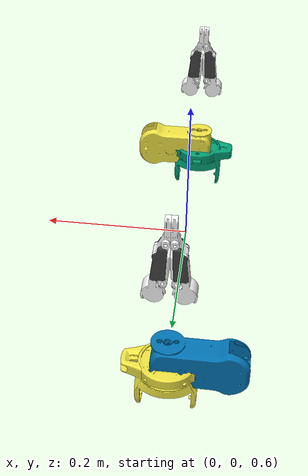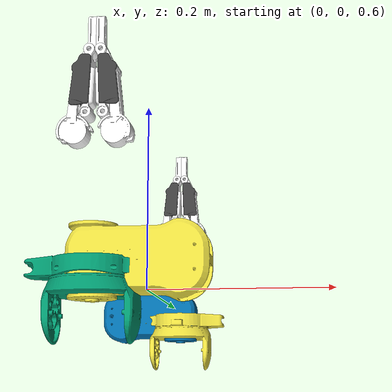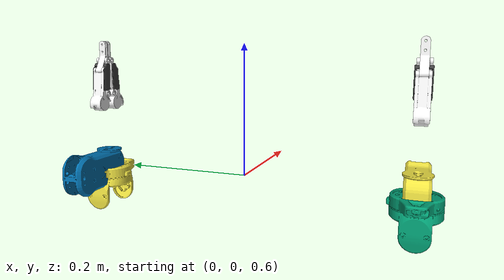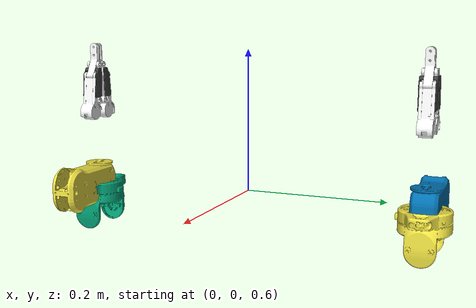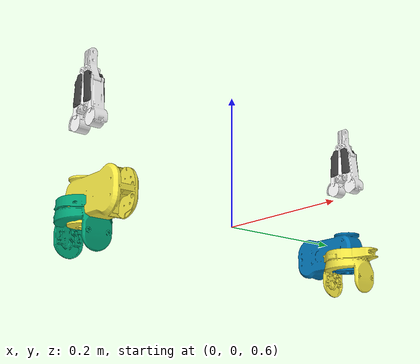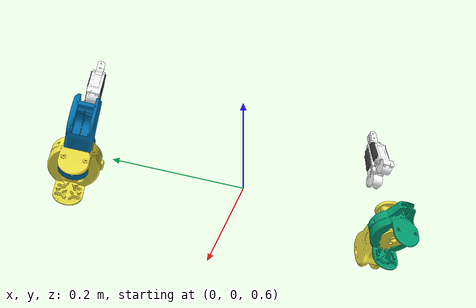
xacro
<?xml version="1.0"?>
<robot name="dual_rg2_realmesh_arm_fixture" xmlns:xacro="http://www.ros.org/wiki/xacro">
  <xacro:arg name="use_standard_fingertips" default="false"/>\n  <xacro:arg name="include_ros2_control" default="false"/>
  <xacro:include filename="$(find onrobot_rg2)/urdf/onrobot_rg2_realmesh_macro.xacro"/>

  <link name="arm_base"/>
  <link name="left_tool0"/>
  <joint name="left_wrist_joint" type="fixed">
    <parent link="arm_base"/><child link="left_tool0"/>
    <origin xyz="0 0.25 0.5" rpy="0 0 0"/>
  </joint>
  <link name="right_tool0"/>
  <joint name="right_wrist_joint" type="fixed">
    <parent link="arm_base"/><child link="right_tool0"/>
    <origin xyz="0 -0.25 0.5" rpy="0 0 0"/>
  </joint>

  <xacro:onrobot_rg2_realmesh parent="left_tool0" prefix="left_gripper_"
                       origin_xyz="0 0 0.08" origin_rpy="0 0 0" include_ros2_control="$(arg include_ros2_control)"/>
  <xacro:onrobot_rg2_realmesh parent="right_tool0" prefix="right_gripper_"
                       origin_xyz="0 0 0.08" origin_rpy="0 0 3.14159265359" include_ros2_control="$(arg include_ros2_control)"/>

  <link name="left_user_finger"/>
  <joint name="left_user_finger_joint" type="fixed">
    <parent link="left_gripper_left_finger_mount"/>
    <child link="left_user_finger"/>
  </joint>
  <link name="right_user_finger"/>
  <joint name="right_user_finger_joint" type="fixed">
    <parent link="right_gripper_right_finger_mount"/>
    <child link="right_user_finger"/>
  </joint>
</robot>

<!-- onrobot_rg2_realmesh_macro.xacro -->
<robot xmlns:xacro="http://www.ros.org/wiki/xacro">

    <!-- ================= Xacro arguments ================= -->

      <xacro:arg name="mesh_path" default="package://onrobot_rg2/meshes"/>
      <xacro:arg name="fingertip_material" default="standard"/>
      <xacro:arg name="use_standard_fingertips" default="true"/>

      <!-- outwards or inwards -->
      <xacro:arg name="fingertip_orientation" default="inwards"/>
      <xacro:arg name="host" default="127.0.0.1"/>
      <xacro:arg name="port" default="502"/>
      <xacro:arg name="transport" default="tcp"/>
      <xacro:arg name="serial_device" default="/dev/ttyUSB0"/>
      <xacro:arg name="baud_rate" default="1000000"/>
      <xacro:arg name="rtu_parity" default="even"/>
      <xacro:arg name="slave_id" default="65"/>
      <xacro:arg name="connect_timeout_ms" default="1000"/>
      <xacro:arg name="read_timeout_ms" default="1000"/>
      <xacro:arg name="write_timeout_ms" default="1000"/>
      <xacro:arg name="backend" default="real"/>
      <xacro:arg name="isaac_joint_commands_topic" default="isaac_joint_commands"/>
      <xacro:arg name="isaac_joint_states_topic" default="isaac_joint_states"/>
      <xacro:arg name="isaac_state_timeout_ms" default="250"/>
      <xacro:arg name="safe_width_min_mm" default="0.0"/>
      <xacro:arg name="safe_width_max_mm" default="110.0"/>
      <xacro:arg name="default_force_n" default="10.0"/>
      <xacro:arg name="realtime_update_rate_hz" default="50"/>

  <xacro:macro name="onrobot_rg2_realmesh"
               params="parent:='' prefix:='' origin_xyz:='0 0 0' origin_rpy:='0 0 0' backend:='real' host:='127.0.0.1' port:='502' transport:='tcp' serial_device:='/dev/ttyUSB0' baud_rate:='1000000' rtu_parity:='even' slave_id:='65' connect_timeout_ms:='1000' read_timeout_ms:='1000' write_timeout_ms:='1000' safe_width_min_mm:='0.0' safe_width_max_mm:='110.0' default_force_n:='10.0' realtime_update_rate_hz:='50' include_ros2_control:=true">
    <!-- The hardware/CAD frame includes the linkage zero phase. The existing
         simulator articulation has its own declared coordinate range. -->
    <xacro:property name="cad_finger_upper" value="${1.22277767395 if backend == 'isaac' else asin(105.0 / 110.0) + asin(2.5 / 55.0)}"/>
    <xacro:if value="${parent != ''}">
      <joint name="${prefix}mount_joint" type="fixed">
        <parent link="${parent}"/>
        <child link="${prefix}base_link"/>
        <origin xyz="${origin_xyz}" rpy="${origin_rpy}"/>
      </joint>
    </xacro:if>
      <!-- ================= Fingertip orientation ================= -->

      <xacro:if value="${'$(arg fingertip_orientation)' == 'inwards'}">
        <xacro:property name="fingertip_rpy_vis" value="${pi / 2} 0 0"/>
        <xacro:property name="fingertip_collision_xyz" value="0 0 0"/>
        <xacro:property name="fingertip_collision_rpy" value="0 0 0"/>
      </xacro:if>

      <xacro:unless value="${'$(arg fingertip_orientation)' == 'inwards'}">
        <xacro:property name="fingertip_rpy_vis" value="${pi / 2} 0 0"/>
        <xacro:property name="fingertip_collision_xyz" value="0 0 -0.007"/>
        <xacro:property name="fingertip_collision_rpy" value="${pi} 0 0"/>

      </xacro:unless>

      <!-- ================= Fingertip material ================= -->

      <xacro:if value="${'$(arg fingertip_material)' == 'standard'}">
        <xacro:property
          name="fingertip_mesh"
          value="$(arg mesh_path)/fingertip_standard"/>
      </xacro:if>

      <xacro:if value="${'$(arg fingertip_material)' == 'x'}">
        <xacro:property
          name="fingertip_mesh"
          value="$(arg mesh_path)/fingertip_x"/>
      </xacro:if>

      <xacro:if value="${'$(arg fingertip_material)' == '50_standard'}">
        <xacro:property
          name="fingertip_mesh"
          value="$(arg mesh_path)/fingertip_50_standard"/>
      </xacro:if>

      <xacro:if value="${'$(arg fingertip_material)' == '50_x'}">
        <xacro:property
          name="fingertip_mesh"
          value="$(arg mesh_path)/fingertip_50_x"/>
      </xacro:if>

      <xacro:if value="${'$(arg fingertip_material)' == '100_standard'}">
        <xacro:property
          name="fingertip_mesh"
          value="$(arg mesh_path)/fingertip_100_standard"/>
      </xacro:if>

      <xacro:if value="${'$(arg fingertip_material)' == '100_x'}">
        <xacro:property
          name="fingertip_mesh"
          value="$(arg mesh_path)/fingertip_100_x"/>
      </xacro:if>

      <!-- ================= Fingertip inertial values ================= -->

      <!-- ================= Standard and x fingertip inertia ================= -->

      <xacro:if value="${'$(arg fingertip_material)' == 'standard' or '$(arg fingertip_material)' == 'x'}">

        <xacro:property
            name="fingertip_inertial_origin_xyz"
            value="0.000874448371820824 -2.28131673908659E-09 0.000216515486391504"/>
        <xacro:property name="fingertip_mass" value="0.004350525975552"/>
        <xacro:property name="fingertip_ixx" value="1.83172636303896E-07"/>
        <xacro:property name="fingertip_ixy" value="4.94040580376697E-14"/>
        <xacro:property name="fingertip_ixz" value="3.25324283899849E-09"/>
        <xacro:property name="fingertip_iyy" value="3.17534542484979E-07"/>
        <xacro:property name="fingertip_iyz" value="-1.30290439090972E-13"/>
        <xacro:property name="fingertip_izz" value="4.52560677067772E-07"/>

      </xacro:if>

      <!-- ================= 50 mm standard and x extension inertia ================= -->

      <xacro:if value="${'$(arg fingertip_material)' == '50_standard' or '$(arg fingertip_material)' == '50_x'}">
        <xacro:property
            name="fingertip_inertial_origin_xyz"
            value="0.029538 1.5497E-08 -0.00072798"/>
        <xacro:property name="fingertip_mass" value="0.018914"/>
        <xacro:property name="fingertip_ixx" value="5.1355E-07"/>
        <xacro:property name="fingertip_ixy" value="8.9434E-12"/>
        <xacro:property name="fingertip_ixz" value="-1.2966E-08"/>
        <xacro:property name="fingertip_iyy" value="6.4087E-06"/>
        <xacro:property name="fingertip_iyz" value="-1.2067E-12"/>
        <xacro:property name="fingertip_izz" value="6.7141E-06"/>
      </xacro:if>

      <!-- ================= 100 mm standard and x extension inertia ================= -->

      <xacro:if value="${'$(arg fingertip_material)' == '100_standard' or '$(arg fingertip_material)' == '100_x'}">
          <xacro:property
            name="fingertip_inertial_origin_xyz"
            value="0.055588 3.8168E-08 -0.0010111"/>
        <xacro:property name="fingertip_mass" value="0.029865"/>
        <xacro:property name="fingertip_ixx" value="6.8081E-07"/>
        <xacro:property name="fingertip_ixy" value="6.2987E-11"/>
        <xacro:property name="fingertip_ixz" value="-5.1688E-08"/>
        <xacro:property name="fingertip_iyy" value="3.0434E-05"/>
        <xacro:property name="fingertip_iyz" value="-4.1937E-12"/>
        <xacro:property name="fingertip_izz" value="3.0817E-05"/>
      </xacro:if>

      <!-- ================= Fingertip inertial macro ================= -->

      <xacro:macro name="fingertip_inertial">
        <inertial>
          <origin
            xyz="${fingertip_inertial_origin_xyz}"
            rpy="0 0 0"/>
          <mass value="${fingertip_mass}"/>
          <inertia
            ixx="${fingertip_ixx}"
            ixy="${fingertip_ixy}"
            ixz="${fingertip_ixz}"
            iyy="${fingertip_iyy}"
            iyz="${fingertip_iyz}"
            izz="${fingertip_izz}"/>
        </inertial>
      </xacro:macro>

      <!-- ================= Shared materials ================= -->

      <material name="${prefix}body_white">
        <color rgba="1 1 1 1"/>
      </material>

      <material name="${prefix}cover_grey">
        <color
          rgba="0.25 0.25 0.25 1"/>
      </material>

      <!-- ================= Base link ================= -->

      <link name="${prefix}base_link">
        <inertial>
          <origin
            xyz="-0.00131198418656629 -0.000556731965880301 0.0176321259155524"
            rpy="0 0 0"/>
          <mass value="0.193451999968638"/>
          <inertia
            ixx="5.90803630433479E-05"
            ixy="-1.71397505073997E-08"
            ixz="3.54830418963831E-07"
            iyy="5.66555282982983E-05"
            iyz="-1.97668620237827E-07"
            izz="9.97553228051711E-05"/>
        </inertial>

        <visual>
          <origin
            xyz="0 0 0.01384"
            rpy="${pi} 0 ${pi}"/>
          <geometry>
            <mesh filename="$(arg mesh_path)/base_link.dae"/>
          </geometry>
        </visual>

        <collision>
          <origin xyz="0 0 0" rpy="0 0 0"/>
          <geometry>
            <mesh filename="$(arg mesh_path)/base_link.STL"/>
          </geometry>
        </collision>
      </link>

      <!-- ================= Body link ================= -->

      <link name="${prefix}body_link">
        <inertial>
          <origin
            xyz="0.0361404290088884 -4.28195287969727E-05 -5.16032341026391E-05"
            rpy="0 0 0"/>
          <mass value="0.463836579743255"/>
          <inertia
            ixx="0.000112619382113841"
            ixy="-2.64039125247071E-06"
            ixz="4.11872244580003E-07"
            iyy="0.000394091945870666"
            iyz="2.70518016902612E-08"
            izz="0.000318367398754903"/>
        </inertial>

        <visual>
          <origin
            xyz="-0.0335 0 0"
            rpy="0 -${pi/2} 0"/>
          <geometry>
            <mesh filename="$(arg mesh_path)/body_link.dae"/>
          </geometry>
        </visual>

        <collision>
          <origin
            xyz="0 0 0"
            rpy="${pi} 0 0"/>
          <geometry>
            <mesh filename="$(arg mesh_path)/body_link.STL"/>
          </geometry>
        </collision>
      </link>

      <joint name="${prefix}body_joint" type="fixed">
        <origin
          xyz="0 0 0.04734"
          rpy="0 -1.5707963267949 0"/>
        <parent link="${prefix}base_link"/>
        <child link="${prefix}body_link"/>
      </joint>

      <!-- ================= Right outer proximal finger ================= -->

      <link name="${prefix}right_outer_proximal_finger_link">
        <inertial>
          <origin
            xyz="0.0549431524395903 -0.00249999999999203 0.000300000004998558"
            rpy="0 0 0"/>
          <mass value="0.000949825473476506"/>
          <inertia
            ixx="4.40551301449513E-09"
            ixy="2.09495677045624E-24"
            ixz="2.06150514093411E-24"
            iyy="4.40551301449514E-09"
            iyz="-7.79803711667657E-24"
            izz="6.16606121744734E-09"/>
        </inertial>

        <visual>
          <origin xyz="0 0 0" rpy="0 0 0"/>
          <geometry>
            <mesh
              filename="$(arg mesh_path)/right_outer_proximal_finger_link.STL"/>
          </geometry>
          <material name="${prefix}body_white"/>
        </visual>

        <collision>
          <origin xyz="0 0 0" rpy="0 0 0"/>
          <geometry>
            <mesh
              filename="$(arg mesh_path)/right_outer_proximal_finger_link.STL"/>
          </geometry>
        </collision>
      </link>

      <joint name="${prefix}finger_joint" type="revolute">
        <origin
          xyz="0.076 0 -0.01695"
          rpy="-1.5708 0 0"/>
        <parent link="${prefix}body_link"/>
        <child link="${prefix}right_outer_proximal_finger_link"/>
        <axis xyz="0 0 1"/>
        <limit
          lower="0"
          upper="${cad_finger_upper}"
          effort="2.9"
          velocity="1.753"/>
      </joint>

      <!-- ================= Right finger cover arm ================= -->

      <link name="${prefix}right_finger_cover_arm_link">
        <inertial>
          <origin
            xyz="0.00402747500688258 -0.00226575451595132 7.49786625480784E-05"
            rpy="0 0 0"/>
          <mass value="0.000275378490192093"/>
          <inertia
            ixx="2.51597692156251E-09"
            ixy="1.29593094681286E-09"
            ixz="-2.29982206511419E-14"
            iyy="4.0362519379352E-09"
            iyz="1.60986576546714E-14"
            izz="3.79488588774442E-09"/>
        </inertial>

        <visual>
          <origin xyz="0 0 0" rpy="0 0 0"/>
          <geometry>
            <mesh
              filename="$(arg mesh_path)/right_finger_cover_arm_link.STL"/>
          </geometry>
          <material name="${prefix}cover_grey"/>
        </visual>

        <collision>
          <origin xyz="0 0 0" rpy="0 0 0"/>
          <geometry>
            <mesh
              filename="$(arg mesh_path)/right_finger_cover_arm_link.STL"/>
          </geometry>
        </collision>
      </link>

      <joint name="${prefix}right_finger_cover_arm_joint" type="continuous">
        <origin
          xyz="0.0200247913038149 8.99497540430838E-05 0"
          rpy="0 0 0"/>
        <parent link="${prefix}right_outer_proximal_finger_link"/>
        <child link="${prefix}right_finger_cover_arm_link"/>
        <axis xyz="0 0 1"/>
        <mimic
          joint="${prefix}finger_joint"
          multiplier="-1"
          offset="0"/>
      </joint>

      <!-- ================= Right finger cover ================= -->

      <link name="${prefix}right_finger_cover_link">
        <inertial>
          <origin
            xyz="0.0160456742219451 -0.00117289097565787 -0.000299987923847552"
            rpy="0 0 0"/>
          <mass value="0.00238596228059738"/>
          <inertia
            ixx="4.39898697731722E-08"
            ixy="3.09574885566677E-08"
            ixz="7.78954430157744E-14"
            iyy="3.9272551878155E-07"
            iyz="-5.00980257567142E-14"
            izz="4.310453229369E-07"/>
        </inertial>

        <visual>
          <origin xyz="0 0 0" rpy="0 0 0"/>
          <geometry>
            <mesh
              filename="$(arg mesh_path)/right_finger_cover_link.STL"/>
          </geometry>
          <material name="${prefix}cover_grey"/>
        </visual>

        <collision>
          <origin xyz="0 0 0" rpy="0 0 0"/>
          <geometry>
            <mesh
              filename="$(arg mesh_path)/right_finger_cover_link.STL"/>
          </geometry>
        </collision>
      </link>

      <joint name="${prefix}right_finger_cover_joint" type="continuous">
        <origin
          xyz="0.0082499964519562 -0.0047500061623866 0"
          rpy="0 0 0"/>
        <parent link="${prefix}right_finger_cover_arm_link"/>
        <child link="${prefix}right_finger_cover_link"/>
        <axis xyz="0 0 1"/>
        <mimic
          joint="${prefix}finger_joint"
          multiplier="1"
          offset="0"/>
      </joint>

      <!-- ================= Right finger base ================= -->

      <link name="${prefix}right_finger_base_link">
        <inertial>
          <origin
            xyz="0.0190391495388182 -0.00734945969008528 -0.000300005016238398"
            rpy="0 0 0"/>
          <mass value="0.0113435416196245"/>
          <inertia
            ixx="3.81411331619534E-07"
            ixy="5.77709795343558E-07"
            ixz="1.00938104078554E-13"
            iyy="2.42489387459591E-06"
            iyz="2.12234135605753E-13"
            izz="2.56166646481153E-06"/>
        </inertial>

        <visual>
          <origin xyz="0 0 0" rpy="0 0 0"/>
          <geometry>
            <mesh
              filename="$(arg mesh_path)/right_finger_base_link.STL"/>
          </geometry>
          <material name="${prefix}body_white"/>
        </visual>

        <collision>
          <origin xyz="0 0 0" rpy="0 0 0"/>
          <geometry>
            <mesh
              filename="$(arg mesh_path)/right_finger_base_link.STL"/>
          </geometry>
        </collision>
      </link>

      <joint name="${prefix}right_finger_base_joint" type="continuous">
        <origin
          xyz="0.0549431524395901 -0.00249999999999208 0"
          rpy="0 0 0"/>
        <parent link="${prefix}right_outer_proximal_finger_link"/>
        <child link="${prefix}right_finger_base_link"/>
        <axis xyz="0 0 1"/>
        <mimic
          joint="${prefix}finger_joint"
          multiplier="-1"
          offset="0"/>
      </joint>

      <!-- ================= Right fingertip ================= -->

      <xacro:if value="$(arg use_standard_fingertips)">
      <link name="${prefix}right_finger_tip_link">
        <xacro:fingertip_inertial/>

        <visual>
          <origin
            xyz="${fingertip_collision_xyz}"
            rpy="${fingertip_collision_rpy}"/>
          <geometry>
                <mesh filename="${fingertip_mesh}_link.dae"/>
          </geometry>
        </visual>

        <collision>
          <origin
            xyz="${fingertip_collision_xyz}"
            rpy="${fingertip_collision_rpy}"/>
          <geometry>
                <mesh filename="${fingertip_mesh}_link.STL"/>
          </geometry>
        </collision>
      </link>
      </xacro:if>

      <link name="${prefix}right_finger_mount"/>

      <joint name="${prefix}right_finger_mount_joint" type="fixed">
        <origin
          xyz="0.0365 -0.0145 -0.0003"
          rpy="0 0 0"/>
        <parent link="${prefix}right_finger_base_link"/>
        <child link="${prefix}right_finger_mount"/>
      </joint>

      <xacro:if value="$(arg use_standard_fingertips)">
      <joint name="${prefix}right_finger_tip_joint" type="fixed">
        <origin xyz="0 0 0" rpy="${fingertip_rpy_vis}"/>
        <parent link="${prefix}right_finger_mount"/>
        <child link="${prefix}right_finger_tip_link"/>
      </joint>
      </xacro:if>

      <!-- ================= Left outer proximal finger ================= -->

      <link name="${prefix}left_outer_proximal_finger_link">
        <inertial>
          <origin
            xyz="0.0549431524395895 -0.00249999999999233 0.000300000004998667"
            rpy="0 0 0"/>
          <mass value="0.000949825473476506"/>
          <inertia
            ixx="4.40551301449514E-09"
            ixy="-5.35328244924947E-24"
            ixz="2.43481133533544E-24"
            iyy="4.40551301449513E-09"
            iyz="5.10866980805369E-25"
            izz="6.16606121744734E-09"/>
        </inertial>

        <visual>
          <origin xyz="0 0 0" rpy="0 0 0"/>
          <geometry>
            <mesh
              filename="$(arg mesh_path)/left_outer_proximal_finger_link.STL"/>
          </geometry>
          <material name="${prefix}body_white"/>
        </visual>

        <collision>
          <origin xyz="0 0 0" rpy="0 0 0"/>
          <geometry>
            <mesh
              filename="$(arg mesh_path)/left_outer_proximal_finger_link.STL"/>
          </geometry>
        </collision>
      </link>

      <joint name="${prefix}left_outer_proximal_finger_joint" type="revolute">
        <origin
          xyz="0.0759999999999999 0 0.0170499999950017"
          rpy="1.5707963267949 0 0"/>
        <parent link="${prefix}body_link"/>
        <child link="${prefix}left_outer_proximal_finger_link"/>
        <axis xyz="0 0 1"/>
        <limit
          lower="0"
          upper="${cad_finger_upper}"
          effort="2.9"
          velocity="1.753"/>
        <mimic
          joint="${prefix}finger_joint"
          multiplier="1"
          offset="0"/>
      </joint>

      <!-- ================= Left finger cover arm ================= -->

      <link name="${prefix}left_finger_cover_arm_link">
        <inertial>
          <origin
            xyz="0.00398155371535758 -0.00234551241087921 0.000524978662517488"
            rpy="0 0 0"/>
          <mass value="0.0002753784901893"/>
          <inertia
            ixx="2.52764072470494E-09"
            ixy="1.30270225418703E-09"
            ixz="2.54692664978612E-14"
            iyy="4.02458813479656E-09"
            iyz="-1.18068992924501E-14"
            izz="3.79488588772191E-09"/>
        </inertial>

        <visual>
          <origin xyz="0 0 0" rpy="0 0 0"/>
          <geometry>
            <mesh
              filename="$(arg mesh_path)/left_finger_cover_arm_link.STL"/>
          </geometry>
          <material name="${prefix}cover_grey"/>
        </visual>

        <collision>
          <origin xyz="0 0 0" rpy="0 0 0"/>
          <geometry>
            <mesh
              filename="$(arg mesh_path)/left_finger_cover_arm_link.STL"/>
          </geometry>
        </collision>
      </link>

      <joint name="${prefix}left_finger_cover_arm_joint" type="continuous">
        <origin
          xyz="0.0200247913038149 8.99497540546232E-05 0"
          rpy="0 0 0"/>
        <parent link="${prefix}left_outer_proximal_finger_link"/>
        <child link="${prefix}left_finger_cover_arm_link"/>
        <axis xyz="0 0 1"/>
        <mimic
          joint="${prefix}finger_joint"
          multiplier="-1"
          offset="0"/>
      </joint>

      <!-- ================= Left finger cover ================= -->

      <link name="${prefix}left_finger_cover_link">
        <inertial>
          <origin
            xyz="0.0160456222550394 -0.00117286244301727 0.010813408882006"
            rpy="0 0 0"/>
          <mass value="0.00119298249046695"/>
          <inertia
            ixx="2.1995729016884E-08"
            ixy="1.5479102227688E-08"
            ixz="-1.63237337618954E-09"
            iyy="1.96363375879819E-07"
            iyz="-2.13914442228796E-11"
            izz="2.15524077561246E-07"/>
        </inertial>

        <visual>
          <origin xyz="0 0 0" rpy="0 0 0"/>
          <geometry>
            <mesh
              filename="$(arg mesh_path)/left_finger_cover_link.STL"/>
          </geometry>
          <material name="${prefix}cover_grey"/>
        </visual>

        <collision>
          <origin xyz="0 0 0" rpy="0 0 0"/>
          <geometry>
            <mesh
              filename="$(arg mesh_path)/left_finger_cover_link.STL"/>
          </geometry>
        </collision>
      </link>

      <joint name="${prefix}left_finger_cover_joint" type="continuous">
        <origin
          xyz="0.00825 -0.00475 0"
          rpy="0 0 0"/>
        <parent link="${prefix}left_finger_cover_arm_link"/>
        <child link="${prefix}left_finger_cover_link"/>
        <axis xyz="0 0 1"/>
        <mimic
          joint="${prefix}finger_joint"
          multiplier="1"
          offset="0"/>
      </joint>

      <!-- ================= Left finger base ================= -->

      <link name="${prefix}left_finger_base_link">
        <inertial>
          <origin
            xyz="0.0190391495388169 -0.00734945969008521 0.000299994993758702"
            rpy="0 0 0"/>
          <mass value="0.0113435416196245"/>
          <inertia
            ixx="3.81411331619531E-07"
            ixy="5.77709795343554E-07"
            ixz="1.00938103147903E-13"
            iyy="2.42489387459591E-06"
            iyz="2.12234135747528E-13"
            izz="2.56166646481153E-06"/>
        </inertial>

        <visual>
          <origin xyz="0 0 0" rpy="0 0 0"/>
          <geometry>
            <mesh
              filename="$(arg mesh_path)/left_finger_base_link.STL"/>
          </geometry>
          <material name="${prefix}body_white"/>
        </visual>

        <collision>
          <origin xyz="0 0 0" rpy="0 0 0"/>
          <geometry>
            <mesh
              filename="$(arg mesh_path)/left_finger_base_link.STL"/>
          </geometry>
        </collision>
      </link>

      <joint name="${prefix}left_finger_base_joint" type="continuous">
        <origin
          xyz="0.054943 -0.0025 0"
          rpy="0 0 0"/>
        <parent link="${prefix}left_outer_proximal_finger_link"/>
        <child link="${prefix}left_finger_base_link"/>
        <axis xyz="0 0 1"/>
        <mimic
          joint="${prefix}finger_joint"
          multiplier="-1"
          offset="0"/>
      </joint>

      <!-- ================= Left fingertip ================= -->

      <xacro:if value="$(arg use_standard_fingertips)">
      <link name="${prefix}left_finger_tip_link">
        <xacro:fingertip_inertial/>

        <visual>
          <origin
            xyz="${fingertip_collision_xyz}"
            rpy="${fingertip_collision_rpy}"/>
          <geometry>
                <mesh filename="${fingertip_mesh}_link.dae"/>
          </geometry>
        </visual>

        <collision>
          <origin
            xyz="${fingertip_collision_xyz}"
            rpy="${fingertip_collision_rpy}"/>
          <geometry>
                <mesh filename="${fingertip_mesh}_link.STL"/>
          </geometry>
        </collision>
      </link>
      </xacro:if>

      <link name="${prefix}left_finger_mount"/>

      <joint name="${prefix}left_finger_mount_joint" type="fixed">
        <origin
          xyz="0.0365 -0.0145 0.0003"
          rpy="0 0 0"/>
        <parent link="${prefix}left_finger_base_link"/>
        <child link="${prefix}left_finger_mount"/>
      </joint>

      <xacro:if value="$(arg use_standard_fingertips)">
      <joint name="${prefix}left_finger_tip_joint" type="fixed">
        <origin xyz="0 0 0" rpy="${fingertip_rpy_vis}"/>
        <parent link="${prefix}left_finger_mount"/>
        <child link="${prefix}left_finger_tip_link"/>
      </joint>
      </xacro:if>

      <!-- ================= Right inner proximal finger ================= -->

      <link name="${prefix}right_inner_proximal_finger_link">
        <inertial>
          <origin
            xyz="0.0243420753391578 -0.00150984138335663 -1.14846121206326E-10"
            rpy="0 0 0"/>
          <mass value="0.0110525137434334"/>
          <inertia
            ixx="5.28599526468673E-07"
            ixy="1.92388035358472E-07"
            ixz="7.0084725912438E-14"
            iyy="4.58187718349257E-06"
            iyz="-1.5791947291098E-13"
            izz="4.16791084165572E-06"/>
        </inertial>

        <visual>
          <origin xyz="0 0 0" rpy="0 0 0"/>
          <geometry>
            <mesh
              filename="$(arg mesh_path)/right_inner_proximal_finger_link.STL"/>
          </geometry>
          <material name="${prefix}body_white"/>
        </visual>

        <collision>
          <origin xyz="0 0 0" rpy="0 0 0"/>
          <geometry>
            <mesh
              filename="$(arg mesh_path)/right_inner_proximal_finger_link.STL"/>
          </geometry>
        </collision>
      </link>

      <joint name="${prefix}right_inner_proximal_finger_joint" type="continuous">
        <origin
          xyz="0.0925000000000006 0 -0.0074500000049881"
          rpy="-1.57079632679489 0 0"/>
        <parent link="${prefix}body_link"/>
        <child link="${prefix}right_inner_proximal_finger_link"/>
        <axis xyz="0 0 1"/>
        <mimic
          joint="${prefix}finger_joint"
          multiplier="1"
          offset="0"/>
      </joint>

      <!-- ================= Left inner proximal finger ================= -->

      <link name="${prefix}left_inner_proximal_finger_link">
        <inertial>
          <origin
            xyz="0.0243420753391564 -0.00150984138331514 -1.19857137688403E-10"
            rpy="0 0 0"/>
          <mass value="0.0110525137434334"/>
          <inertia
            ixx="5.28599526468524E-07"
            ixy="1.92388035356887E-07"
            ixz="7.00847294261671E-14"
            iyy="4.58187718349272E-06"
            iyz="-1.57919476311131E-13"
            izz="4.16791084165572E-06"/>
        </inertial>

        <visual>
          <origin xyz="0 0 0" rpy="0 0 0"/>
          <geometry>
            <mesh
              filename="$(arg mesh_path)/left_inner_proximal_finger_link.STL"/>
          </geometry>
          <material name="${prefix}body_white"/>
        </visual>

        <collision>
          <origin xyz="0 0 0" rpy="0 0 0"/>
          <geometry>
            <mesh
              filename="$(arg mesh_path)/left_inner_proximal_finger_link.STL"/>
          </geometry>
        </collision>
      </link>

      <joint name="${prefix}left_inner_proximal_finger_joint" type="continuous">
        <origin
          xyz="0.0925 0 0.00754999999500211"
          rpy="1.5707963267949 0 0"/>
        <parent link="${prefix}body_link"/>
        <child link="${prefix}left_inner_proximal_finger_link"/>
        <axis xyz="0 0 1"/>
        <mimic
          joint="${prefix}finger_joint"
          multiplier="1"
          offset="0"/>
      </joint>

      <!-- ================= Fingertip friction ================= -->

      <gazebo reference="${prefix}left_finger_tip_link">
        <mu1>0.4</mu1>
        <mu2>0.4</mu2>
      </gazebo>

      <gazebo reference="${prefix}right_finger_tip_link">
        <mu1>0.4</mu1>
        <mu2>0.4</mu2>
      </gazebo>

      <!-- Semantic aperture joint. The visual finger-angle mapping is intentionally
           not claimed until calibrated; this joint is the ROS command/state API. -->
      <link name="${prefix}grip_stroke_control_link"/>
      <joint name="${prefix}grip_stroke" type="prismatic">
        <parent link="${prefix}base_link"/><child link="${prefix}grip_stroke_control_link"/>
        <axis xyz="1 0 0"/><limit lower="0" upper="0.110" effort="40" velocity="1"/>
      </joint>

    <xacro:if value="${include_ros2_control}">
        <ros2_control name="${prefix}OnRobotRG2System" type="system">
            <hardware>
              <xacro:if value="${backend == 'real'}"><plugin>onrobot_gripper_hardware/OnRobotRgSystem</plugin></xacro:if>
              <xacro:if value="${backend == 'fake'}"><plugin>onrobot_gripper_hardware/OnRobotParallelGripperFakeSystem</plugin></xacro:if>
              <xacro:if value="${backend == 'isaac'}"><plugin>onrobot_gripper_hardware/OnRobotIsaacSystem</plugin></xacro:if>
              <param name="model">rg2</param>
              <param name="transport">${transport}</param>
              <param name="host">${host}</param>
              <param name="port">${port}</param>
              <param name="serial_device">${serial_device}</param>
              <param name="baud_rate">${baud_rate}</param>
              <param name="rtu_parity">${rtu_parity}</param>
              <param name="slave_id">${slave_id}</param>
              <param name="connect_timeout_ms">${connect_timeout_ms}</param>
              <param name="read_timeout_ms">${read_timeout_ms}</param>
              <param name="write_timeout_ms">${write_timeout_ms}</param>
              <param name="safe_width_min_mm">${safe_width_min_mm}</param><param name="safe_width_max_mm">${safe_width_max_mm}</param>
              <param name="default_force_n">${default_force_n}</param>
              <param name="fake_task_min_m">${float(str(safe_width_min_mm)) / 1000.0}</param>
              <param name="fake_task_max_m">${float(str(safe_width_max_mm)) / 1000.0}</param>
              <param name="visual_finger_joint_upper_rad">${cad_finger_upper}</param>
              <!-- Standard CAD rubber surfaces follow the device-compensated
                   aperture; custom fingers continue to use mechanism angle. -->
              <param name="visual_gap_from_aperture">${'true' if '$(arg use_standard_fingertips)' == 'true' and '$(arg fingertip_material)' == 'standard' and '$(arg fingertip_orientation)' == 'inwards' else 'false'}</param>
              <param name="isaac_joint">finger_joint</param>
              <param name="isaac_joint_commands_topic">$(arg isaac_joint_commands_topic)</param>
              <param name="isaac_joint_states_topic">$(arg isaac_joint_states_topic)</param>
              <param name="isaac_state_timeout_ms">$(arg isaac_state_timeout_ms)</param>
              <param name="task_min_m">${float(str(safe_width_min_mm)) / 1000.0}</param>
              <param name="task_max_m">${float(str(safe_width_max_mm)) / 1000.0}</param>
              <param name="physical_min_m">0.0</param>
              <param name="physical_max_m">1.22277767395</param>
              <param name="raw_linear_min_mm">0.0</param>
              <param name="raw_linear_max_mm">1222.77767395</param>
              <param name="realtime_update_rate_hz">${realtime_update_rate_hz}</param>
              <param name="realtime_command_timeout_ms">100</param>
              <param name="realtime_maximum_consecutive_failures">3</param>
            </hardware>
            <joint name="${prefix}grip_stroke">
              <command_interface name="position"/><command_interface name="effort"/>
              <command_interface name="realtime_mode"/>
              <command_interface name="realtime_task_position"/>
              <command_interface name="realtime_mechanism_angular_velocity"/>
              <command_interface name="realtime_force"/>
              <command_interface name="realtime_command_sequence"/>
              <command_interface name="fault_recovery_command_sequence"/>
              <command_interface name="stop_command_sequence"/>
              <command_interface name="conventional_command_sequence"/>
              <state_interface name="position"/><state_interface name="velocity"/>
              <state_interface name="effort"/>
              <state_interface name="task_position_valid"/>
              <state_interface name="force_valid"/><state_interface name="busy"/>
              <state_interface name="grip_detected"/><state_interface name="active_mode"/>
              <state_interface name="safety_status_valid"/>
              <state_interface name="safety_1_pushed"/><state_interface name="safety_1_triggered"/>
              <state_interface name="safety_2_pushed"/><state_interface name="safety_2_triggered"/>
              <state_interface name="safety_dc_error"/>
              <state_interface name="connection_state"/>
              <state_interface name="faulted"/><state_interface name="fault_code"/>
              <state_interface name="firmware_qualification"/>
              <state_interface name="sample_sequence"/><state_interface name="sample_age"/>
              <state_interface name="requested_command_sequence"/>
              <state_interface name="applied_command_sequence"/>
              <state_interface name="successful_cycles"/>
              <state_interface name="failed_cycles"/><state_interface name="missed_deadlines"/>
              <state_interface name="watchdog_stops"/><state_interface name="reconnects"/><state_interface name="last_cycle_duration"/>
              <state_interface name="minimum_task_aperture"/><state_interface name="maximum_task_aperture"/>
              <state_interface name="diagnostic_status_valid"/>
              <state_interface name="diagnostic_identity_valid" />
              <state_interface name="diagnostic_product_code" />
              <state_interface name="diagnostic_firmware_major" />
              <state_interface name="diagnostic_firmware_minor" />
              <state_interface name="diagnostic_firmware_build" />
              <state_interface name="diagnostic_board_revisions_valid" />
              <state_interface name="diagnostic_product_revision" />
              <state_interface name="diagnostic_hardware_revision" />
              <state_interface name="diagnostic_pcb_revision" />
              <state_interface name="diagnostic_firmware_crc_valid" />
              <state_interface name="diagnostic_firmware_crc" />
              <state_interface name="diagnostic_firmware_source_valid" />
              <state_interface name="diagnostic_firmware_git_word_0" />
              <state_interface name="diagnostic_firmware_git_word_1" />
              <state_interface name="diagnostic_firmware_git_word_2" />
              <state_interface name="diagnostic_firmware_git_word_3" />
              <state_interface name="diagnostic_firmware_git_word_4" />
              <state_interface name="diagnostic_raw_status"/>
              <state_interface name="diagnostic_busy"/>
              <state_interface name="diagnostic_grip_detected"/>
              <state_interface name="diagnostic_sample_sequence"/>
              <state_interface name="diagnostic_age"/>
              <state_interface name="diagnostic_command_force"/>
              <state_interface name="diagnostic_command_force_valid"/>
              <state_interface name="diagnostic_measured_force"/>
              <state_interface name="diagnostic_measured_force_valid"/>
              <state_interface name="diagnostic_force_provenance"/>
              <state_interface name="diagnostic_motor_voltage"/>
              <state_interface name="diagnostic_motor_current"/>
              <state_interface name="diagnostic_temperature"/>
              <state_interface name="diagnostic_realtime_linear_velocity"/>
              <state_interface name="diagnostic_realtime_angular_velocity"/>
              <state_interface name="diagnostic_realtime_force"/>
              <state_interface name="diagnostic_supply_power"/>
              <state_interface name="diagnostic_maximum_force"/>
              <state_interface name="diagnostic_maximum_realtime_force"/>
              <state_interface name="diagnostic_statistics_valid"/>
              <state_interface name="diagnostic_conventional_grip_on_time"/>
              <state_interface name="diagnostic_power_cycles"/>
              <state_interface name="diagnostic_conventional_grip_cycles"/>
              <state_interface name="diagnostic_grip_detected_count"/>
              <state_interface name="diagnostic_realtime_grip_on_time"/>
              <state_interface name="diagnostic_rg_fingertip_offset_mm"/>
              <state_interface name="diagnostic_rg_depth_acceleration_mm_s2"/>
              <state_interface name="diagnostic_rg_depth_speed_mm_s"/>
              <state_interface name="diagnostic_rg_actual_depth_mm"/>
              <state_interface name="diagnostic_rg_actual_relative_depth_mm"/>
              <state_interface name="diagnostic_rg_mechanism_angle_rad"/>
              <state_interface name="diagnostic_rg_legacy_angular_velocity_rad_s"/>
              <state_interface name="diagnostic_rg_actual_width_mm"/>
              <state_interface name="diagnostic_rg_voltage_5v_v"/>
              <state_interface name="diagnostic_rg_safety_24v_v"/>
              <state_interface name="diagnostic_rg_plug_24v_v"/>
              <state_interface name="diagnostic_rg_width_with_fingertip_mm"/>
              <state_interface name="diagnostic_rg_error_code"/>
            </joint>
            <joint name="${prefix}finger_joint">
              <state_interface name="position"/><state_interface name="velocity"/>
              <state_interface name="measured_angular_position"/>
              <state_interface name="measured_angular_velocity"/>
              <state_interface name="position_valid"/><state_interface name="velocity_valid"/>
            </joint>
          </ros2_control>
    </xacro:if>
  </xacro:macro>
</robot>
